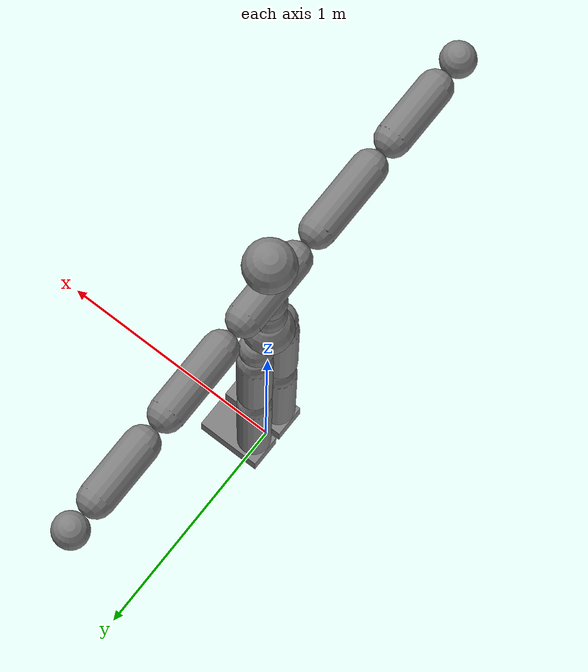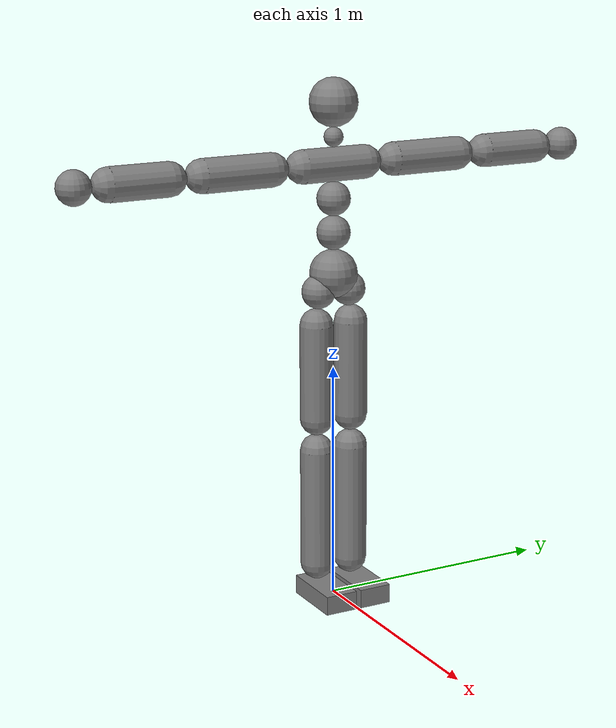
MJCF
<mujoco model='humanoid_custom'>
	<worldbody>
		<body name='Hips' pos='0 0 1.4'>
			<geom name='Hips' type='sphere' pos='0 0 0' size='0.1' />
			<geom name='LeftPelvis' type='sphere' pos='0 .07 -.07' size='0.07' />
			<geom name='RightPelvis' type='sphere' pos='0 -.07 -.07' size='0.07' />
			<!--joint name='Fix' type='fixed' pos='0 0 0' /-->
			<body name='LeftUpLeg' pos='0 .08 -.07'>
				<geom name='LeftUpLeg' type='capsule' fromto='0 0 -.14 0 0 -.54' size='0.07' />
				<joint name='LeftUpLeg_z' type='hinge' pos='0 0 0' axis='0 0 1' />
				<joint name='LeftUpLeg_x' type='hinge' pos='0 0 0' axis='1 0 0' />
				<joint name='LeftUpLeg_y' type='hinge' pos='0 0 0' axis='0 1 0' />
				<body name='LeftLeg' pos='0 0 -.61'>
					<geom name='LeftLeg' type='capsule' fromto='0 0 -.07 0 0 -.57' size='0.07' />
					<joint name='LeftLeg_y' type='hinge' pos='0 0 0' axis='0 1 0' />
					<body name='LeftFoot' pos='0 0 -.64'>
						<geom name='LeftFoot' type='box' pos='.08 0 -.04' size='0.14 0.07 0.04' />
						<joint name='LeftFoot_z' type='hinge' pos='0 0 0' axis='0 0 1' />
						<joint name='LeftFoot_x' type='hinge' pos='0 0 0' axis='1 0 0' />
						<joint name='LeftFoot_y' type='hinge' pos='0 0 0' axis='0 1 0' />
					</body>
				</body>
			</body>
			<body name='RightUpLeg' pos='0 -.08 -.07'>
				<geom name='RightUpLeg' type='capsule' fromto='0 0 -.14  0 0 -.54' size='0.07' />
				<joint name='RightUpLeg_z' type='hinge' pos='0 0 0' axis='0 0 1' />
				<joint name='RightUpLeg_x' type='hinge' pos='0 0 0' axis='1 0 0' />
				<joint name='RightUpLeg_y' type='hinge' pos='0 0 0' axis='0 1 0' />
				<body name='RightLeg' pos='0 0 -.61'>
					<geom name='RightLeg' type='capsule' fromto='0 0 -.07 0 0 -.57' size='0.07' />
					<joint name='RightLeg_y' type='hinge' pos='0 0 0' axis='0 1 0' />
					<body name='RightFoot' pos='0 0 -.64'>
						<geom name='RightFoot' type='box' pos='.08 0 -.04' size='0.14 0.07 0.04' />
						<joint name='RightFoot_z' type='hinge' pos='0 0 0' axis='0 0 1' />
						<joint name='RightFoot_x' type='hinge' pos='0 0 0' axis='1 0 0' />
						<joint name='RightFoot_y' type='hinge' pos='0 0 0' axis='0 1 0' />
					</body>
				</body>
			</body>
			<body name='ToSpine' pos='0 0 .17'>
				<geom name='ToSpine' type='sphere' pos='0 0 0' size='0.07' />
				<joint name='ToSpine_z' type='hinge' pos='0 0 -.07' axis='0 0 1' />
				<joint name='ToSpine_x' type='hinge' pos='0 0 -.07' axis='1 0 0' />
				<joint name='ToSpine_y' type='hinge' pos='0 0 -.07' axis='0 1 0' />
				<body name='Spine' pos='0 0 .14'>
					<geom name='Spine' type='sphere' pos='0 0 0' size='0.07' />
					<joint name='Spine_z' type='hinge' pos='0 0 -.07' axis='0 0 1' />
					<joint name='Spine_x' type='hinge' pos='0 0 -.07' axis='1 0 0' />
					<joint name='Spine_y' type='hinge' pos='0 0 -.07' axis='0 1 0' />
					<body name='Torso' pos='0 0 .14'>
						<geom name='Torso' type='capsule' fromto='0 .14 0 0 -.14 0' size='0.07' />
						<joint name='Spine1_z' type='hinge' pos='0 0 -.07' axis='0 0 1' />
						<joint name='Spine1_x' type='hinge' pos='0 0 -.07' axis='1 0 0' />
						<joint name='Spine1_y' type='hinge' pos='0 0 -.07' axis='0 1 0' />
						<body name='Neck' pos='0 0 .11'>
							<geom name='Neck' type='sphere' pos='0 0 0' size='0.04' />
							<joint name='Neck_z' type='hinge' pos='0 0 -.04' axis='0 0 1' />
							<joint name='Neck_x' type='hinge' pos='0 0 -.04' axis='1 0 0' />
							<joint name='Neck_y' type='hinge' pos='0 0 -.04' axis='0 1 0' />
							<body name='Head' pos='0 0 .14'>
								<geom name='Head' type='sphere' pos='0 0 0' size='0.1' />
								<joint name='Head_z' type='hinge' pos='0 0 -.1' axis='0 0 1' />
								<joint name='Head_x' type='hinge' pos='0 0 -.1' axis='1 0 0' />
								<joint name='Head_y' type='hinge' pos='0 0 -.1' axis='0 1 0' />
							</body>
						</body>
						<body name='LeftUpperArm' pos='0 .21 0'>
							<geom name='LeftUpperArm' type='capsule' fromto='0 .07 0 0 .37 0' size='0.07' />
							<joint name='LeftShoulder_z' type='hinge' pos='0 0 0' axis='0 0 1' />
							<joint name='LeftShoulder_x' type='hinge' pos='0 0 0' axis='1 0 0' />
							<joint name='LeftShoulder_y' type='hinge' pos='0 0 0' axis='0 1 0' />
							<body name='LeftLowerArm' pos='0 .44 0'>
								<geom name='LeftLowerArm' type='capsule' fromto='0 .07 0 0 .32 0' size='0.07' />
								<joint name='LeftArm_z' type='hinge' pos='0 0 0' axis='0 0 1' />
								<joint name='LeftArm_x' type='hinge' pos='0 0 0' axis='1 0 0' />
								<joint name='LeftArm_y' type='hinge' pos='0 0 0' axis='0 1 0' />
								<body name='LeftHand' pos='0 .39 0'>
									<geom name='LeftHand' type='sphere' pos='0 .07 0' size='0.07' />
									<joint name='LeftForeArm_z' type='hinge' pos='0 0 0' axis='0 0 1' />
									<joint name='LeftForeArm_x' type='hinge' pos='0 0 0' axis='1 0 0' />
									<joint name='LeftForeArm_y' type='hinge' pos='0 0 0' axis='0 1 0' />
								</body>
							</body>
						</body>
						<body name='RightUpperArm' pos='0 -.21 0'>
							<geom name='RightUpperArm' type='capsule' fromto='0 -.07 0 0 -.37 0' size='0.07' />
							<joint name='RightShoulder_z' type='hinge' pos='0 0 0' axis='0 0 1' />
							<joint name='RightShoulder_x' type='hinge' pos='0 0 0' axis='1 0 0' />
							<joint name='RightShoulder_y' type='hinge' pos='0 0 0' axis='0 1 0' />
							<body name='RightLowerArm' pos='0 -.44 0'>
								<geom name='RightLowerArm' type='capsule' fromto='0 -.07 0 0 -.32 0' size='0.07' />
								<joint name='RightArm_z' type='hinge' pos='0 0 0' axis='0 0 1' />
								<joint name='RightArm_x' type='hinge' pos='0 0 0' axis='1 0 0' />
								<joint name='RightArm_y' type='hinge' pos='0 0 0' axis='0 1 0' />
								<body name='RightHand' pos='0 -.39 0'>
									<geom name='RightHand' type='sphere' pos='0 -.07 0' size='0.07' />
									<joint name='RightForeArm_z' type='hinge' pos='0 0 0' axis='0 0 1' />
									<joint name='RightForeArm_x' type='hinge' pos='0 0 0' axis='1 0 0' />
									<joint name='RightForeArm_y' type='hinge' pos='0 0 0' axis='0 1 0' />
								</body>
							</body>
						</body>
					</body>
				</body>
			</body>
		</body>
	</worldbody>
</mujoco>
